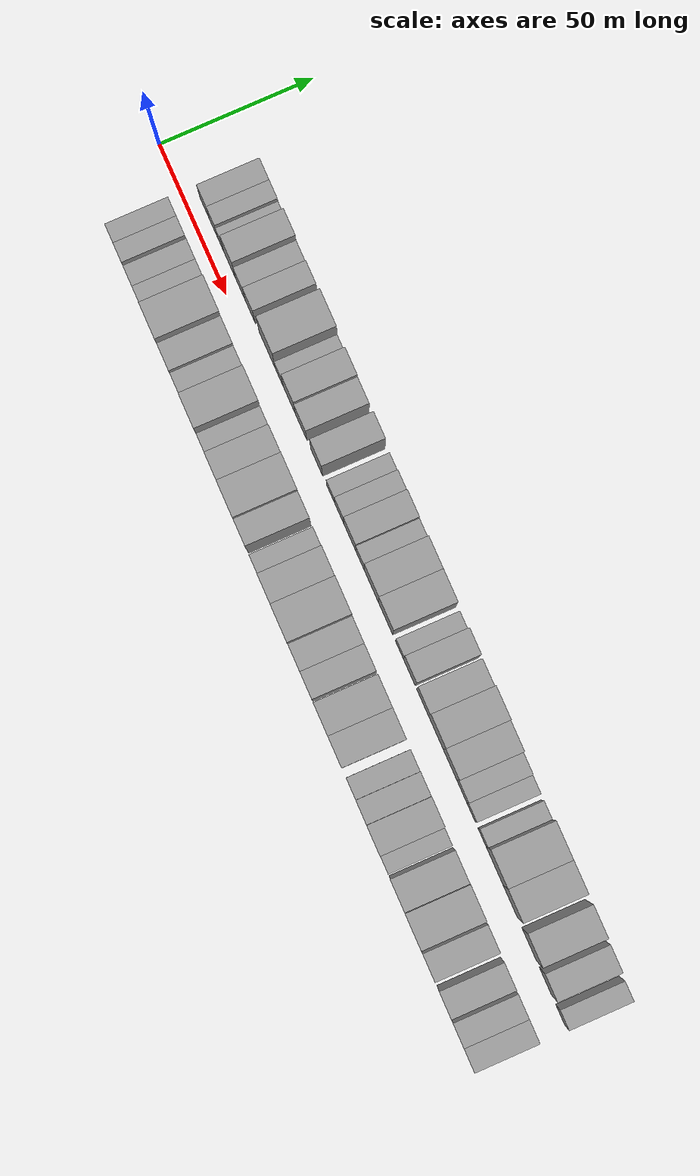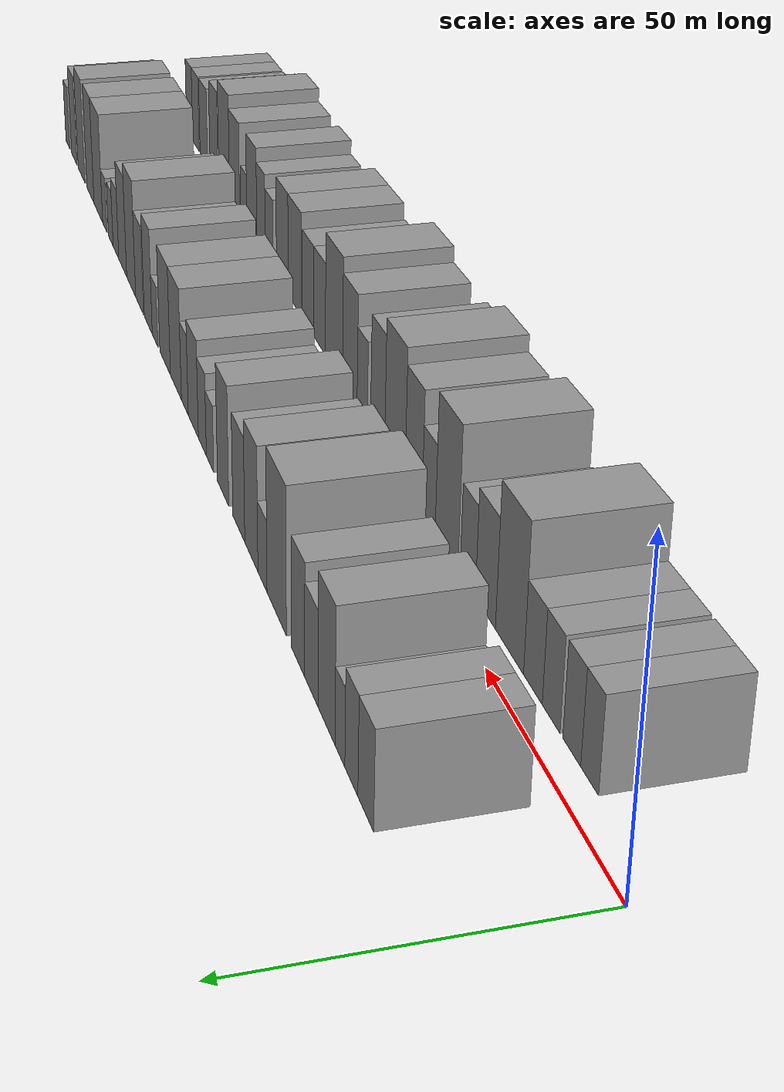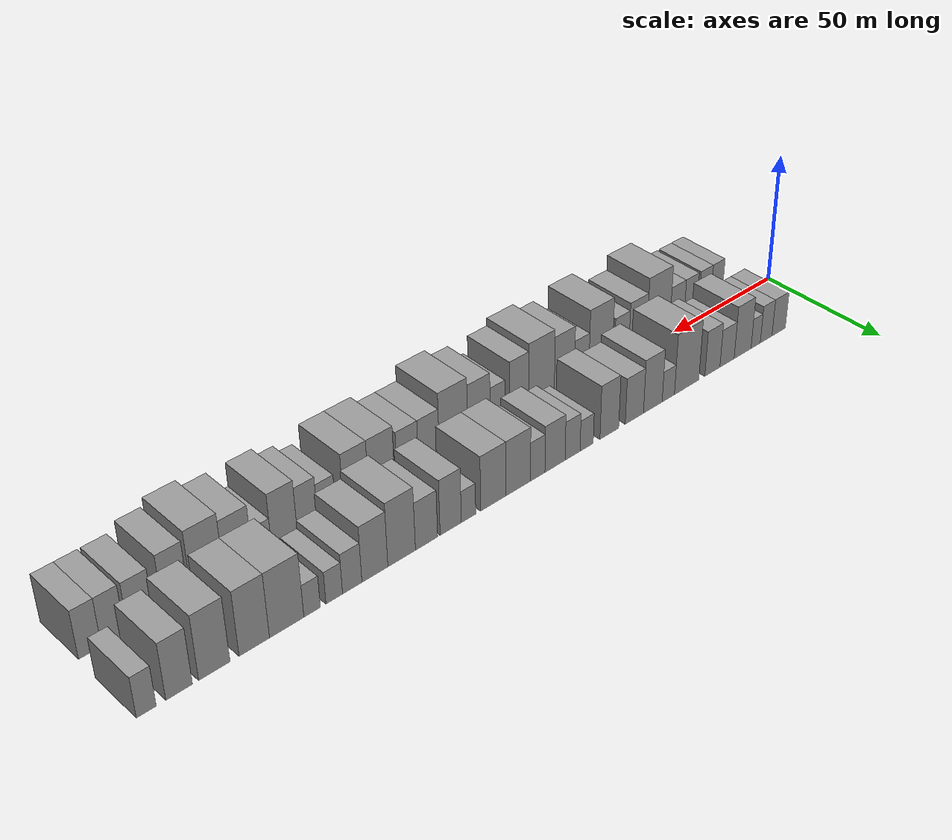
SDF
<sdf version="1.6">
 <world name="default">
  <scene>
   <sky><clouds><speed>12</speed></clouds></sky>
   <ambient>0.4 0.4 0.4 1</ambient>
   <background>0.7 0.7 0.7 1</background>
   <shadows>1</shadows>
  </scene>
  <gravity>0 0 -9.8066</gravity>
  <magnetic_field>6e-06 2.3e-05 -4.2e-05</magnetic_field>
  <physics default="0" name="default_physics" type="ode">
   <ode>
    <solver>
     <type>quick</type>
     <iters>10</iters>
     <sor>1.0</sor>
     <use_dynamic_moi_rescaling>0</use_dynamic_moi_rescaling>
    </solver>
    <constraints>
     <cfm>0</cfm>
     <erp>0.2</erp>
     <contact_max_correcting_vel>100</contact_max_correcting_vel>
     <contact_surface_layer>0.001</contact_surface_layer>
    </constraints>
   </ode>
   <max_step_size>0.004</max_step_size>
   <real_time_factor>1</real_time_factor>
   <real_time_update_rate>250</real_time_update_rate>
  </physics>
  <light name="sun" type="directional">
   <pose>0 0 10 0 0 0</pose>
   <diffuse>0.8 0.8 0.8 1</diffuse>
   <specular>0.2 0.2 0.2 1</specular>
   <attenuation>
    <range>1000</range>
    <constant>0.9</constant>
    <linear>0.01</linear>
    <quadratic>0.001</quadratic>
   </attenuation>
   <direction>-0.5 0.1 -0.9</direction>
  </light>
  <model name="building_1">
   <static>1</static>
   <pose>23.5653 14.5000 0 0.000000 0.000000 1.570796</pose>
   <link name="link">
    <pose>0 0 7.50 0 0 0</pose>
    <collision name="collision"><geometry><box><size>20.0000 7.1306 15.0000</size></box></geometry></collision>
    <visual name="visual">
     <cast_shadows>0</cast_shadows>
     <geometry><box><size>20.0000 7.1306 15.0000</size></box></geometry>
     <material>
      <script>
       <uri>model://grey_wall/materials/scripts</uri>
       <uri>model://grey_wall/materials/textures</uri>
       <name>vrc/grey_wall</name>
      </script>
     </material>
    </visual>
   </link>
  </model>
  <model name="building_2">
   <static>1</static>
   <pose>30.2055 14.5000 0 0.000000 0.000000 1.570796</pose>
   <link name="link">
    <pose>0 0 7.50 0 0 0</pose>
    <collision name="collision"><geometry><box><size>20.0000 6.1498 15.0000</size></box></geometry></collision>
    <visual name="visual">
     <cast_shadows>0</cast_shadows>
     <geometry><box><size>20.0000 6.1498 15.0000</size></box></geometry>
     <material>
      <script>
       <uri>model://grey_wall/materials/scripts</uri>
       <uri>model://grey_wall/materials/textures</uri>
       <name>vrc/grey_wall</name>
      </script>
     </material>
    </visual>
   </link>
  </model>
  <model name="building_3">
   <static>1</static>
   <pose>35.6908 14.5000 0 0.000000 0.000000 1.570796</pose>
   <link name="link">
    <pose>0 0 6.00 0 0 0</pose>
    <collision name="collision"><geometry><box><size>20.0000 4.8208 12.0000</size></box></geometry></collision>
    <visual name="visual">
     <cast_shadows>0</cast_shadows>
     <geometry><box><size>20.0000 4.8208 12.0000</size></box></geometry>
     <material>
      <script>
       <uri>model://grey_wall/materials/scripts</uri>
       <uri>model://grey_wall/materials/textures</uri>
       <name>vrc/grey_wall</name>
      </script>
     </material>
    </visual>
   </link>
  </model>
  <model name="building_4">
   <static>1</static>
   <pose>42.4431 14.5000 0 0.000000 0.000000 1.570796</pose>
   <link name="link">
    <pose>0 0 10.50 0 0 0</pose>
    <collision name="collision"><geometry><box><size>20.0000 8.6839 21.0000</size></box></geometry></collision>
    <visual name="visual">
     <cast_shadows>0</cast_shadows>
     <geometry><box><size>20.0000 8.6839 21.0000</size></box></geometry>
     <material>
      <script>
       <uri>model://grey_wall/materials/scripts</uri>
       <uri>model://grey_wall/materials/textures</uri>
       <name>vrc/grey_wall</name>
      </script>
     </material>
    </visual>
   </link>
  </model>
  <model name="building_5">
   <static>1</static>
   <pose>50.3970 14.5000 0 0.000000 0.000000 1.570796</pose>
   <link name="link">
    <pose>0 0 7.50 0 0 0</pose>
    <collision name="collision"><geometry><box><size>20.0000 7.2239 15.0000</size></box></geometry></collision>
    <visual name="visual">
     <cast_shadows>0</cast_shadows>
     <geometry><box><size>20.0000 7.2239 15.0000</size></box></geometry>
     <material>
      <script>
       <uri>model://grey_wall/materials/scripts</uri>
       <uri>model://grey_wall/materials/textures</uri>
       <name>vrc/grey_wall</name>
      </script>
     </material>
    </visual>
   </link>
  </model>
  <model name="building_6">
   <static>1</static>
   <pose>57.7726 14.5000 0 0.000000 0.000000 1.570796</pose>
   <link name="link">
    <pose>0 0 9.00 0 0 0</pose>
    <collision name="collision"><geometry><box><size>20.0000 7.5274 18.0000</size></box></geometry></collision>
    <visual name="visual">
     <cast_shadows>0</cast_shadows>
     <geometry><box><size>20.0000 7.5274 18.0000</size></box></geometry>
     <material>
      <script>
       <uri>model://grey_wall/materials/scripts</uri>
       <uri>model://grey_wall/materials/textures</uri>
       <name>vrc/grey_wall</name>
      </script>
     </material>
    </visual>
   </link>
  </model>
  <model name="building_7">
   <static>1</static>
   <pose>70.4926 14.5000 0 0.000000 0.000000 1.570796</pose>
   <link name="link">
    <pose>0 0 12.00 0 0 0</pose>
    <collision name="collision"><geometry><box><size>20.0000 11.9125 24.0000</size></box></geometry></collision>
    <visual name="visual">
     <cast_shadows>0</cast_shadows>
     <geometry><box><size>20.0000 11.9125 24.0000</size></box></geometry>
     <material>
      <script>
       <uri>model://grey_wall/materials/scripts</uri>
       <uri>model://grey_wall/materials/textures</uri>
       <name>vrc/grey_wall</name>
      </script>
     </material>
    </visual>
   </link>
  </model>
  <model name="building_8">
   <static>1</static>
   <pose>79.3904 14.5000 0 0.000000 0.000000 1.570796</pose>
   <link name="link">
    <pose>0 0 6.00 0 0 0</pose>
    <collision name="collision"><geometry><box><size>20.0000 5.8832 12.0000</size></box></geometry></collision>
    <visual name="visual">
     <cast_shadows>0</cast_shadows>
     <geometry><box><size>20.0000 5.8832 12.0000</size></box></geometry>
     <material>
      <script>
       <uri>model://grey_wall/materials/scripts</uri>
       <uri>model://grey_wall/materials/textures</uri>
       <name>vrc/grey_wall</name>
      </script>
     </material>
    </visual>
   </link>
  </model>
  <model name="building_9">
   <static>1</static>
   <pose>86.7748 14.5000 0 0.000000 0.000000 1.570796</pose>
   <link name="link">
    <pose>0 0 10.50 0 0 0</pose>
    <collision name="collision"><geometry><box><size>20.0000 8.8856 21.0000</size></box></geometry></collision>
    <visual name="visual">
     <cast_shadows>0</cast_shadows>
     <geometry><box><size>20.0000 8.8856 21.0000</size></box></geometry>
     <material>
      <script>
       <uri>model://grey_wall/materials/scripts</uri>
       <uri>model://grey_wall/materials/textures</uri>
       <name>vrc/grey_wall</name>
      </script>
     </material>
    </visual>
   </link>
  </model>
  <model name="building_10">
   <static>1</static>
   <pose>95.4599 14.5000 0 0.000000 0.000000 1.570796</pose>
   <link name="link">
    <pose>0 0 9.00 0 0 0</pose>
    <collision name="collision"><geometry><box><size>20.0000 8.4845 18.0000</size></box></geometry></collision>
    <visual name="visual">
     <cast_shadows>0</cast_shadows>
     <geometry><box><size>20.0000 8.4845 18.0000</size></box></geometry>
     <material>
      <script>
       <uri>model://grey_wall/materials/scripts</uri>
       <uri>model://grey_wall/materials/textures</uri>
       <name>vrc/grey_wall</name>
      </script>
     </material>
    </visual>
   </link>
  </model>
  <model name="building_11">
   <static>1</static>
   <pose>106.9820 14.5000 0 0.000000 0.000000 1.570796</pose>
   <link name="link">
    <pose>0 0 10.50 0 0 0</pose>
    <collision name="collision"><geometry><box><size>20.0000 8.5598 21.0000</size></box></geometry></collision>
    <visual name="visual">
     <cast_shadows>0</cast_shadows>
     <geometry><box><size>20.0000 8.5598 21.0000</size></box></geometry>
     <material>
      <script>
       <uri>model://grey_wall/materials/scripts</uri>
       <uri>model://grey_wall/materials/textures</uri>
       <name>vrc/grey_wall</name>
      </script>
     </material>
    </visual>
   </link>
  </model>
  <model name="building_12">
   <static>1</static>
   <pose>117.1965 14.5000 0 0.000000 0.000000 1.570796</pose>
   <link name="link">
    <pose>0 0 6.00 0 0 0</pose>
    <collision name="collision"><geometry><box><size>20.0000 5.8691 12.0000</size></box></geometry></collision>
    <visual name="visual">
     <cast_shadows>0</cast_shadows>
     <geometry><box><size>20.0000 5.8691 12.0000</size></box></geometry>
     <material>
      <script>
       <uri>model://grey_wall/materials/scripts</uri>
       <uri>model://grey_wall/materials/textures</uri>
       <name>vrc/grey_wall</name>
      </script>
     </material>
    </visual>
   </link>
  </model>
  <model name="building_13">
   <static>1</static>
   <pose>123.4394 14.5000 0 0.000000 0.000000 1.570796</pose>
   <link name="link">
    <pose>0 0 7.50 0 0 0</pose>
    <collision name="collision"><geometry><box><size>20.0000 6.6167 15.0000</size></box></geometry></collision>
    <visual name="visual">
     <cast_shadows>0</cast_shadows>
     <geometry><box><size>20.0000 6.6167 15.0000</size></box></geometry>
     <material>
      <script>
       <uri>model://grey_wall/materials/scripts</uri>
       <uri>model://grey_wall/materials/textures</uri>
       <name>vrc/grey_wall</name>
      </script>
     </material>
    </visual>
   </link>
  </model>
  <model name="building_14">
   <static>1</static>
   <pose>131.1230 14.5000 0 0.000000 0.000000 1.570796</pose>
   <link name="link">
    <pose>0 0 9.00 0 0 0</pose>
    <collision name="collision"><geometry><box><size>20.0000 8.7505 18.0000</size></box></geometry></collision>
    <visual name="visual">
     <cast_shadows>0</cast_shadows>
     <geometry><box><size>20.0000 8.7505 18.0000</size></box></geometry>
     <material>
      <script>
       <uri>model://grey_wall/materials/scripts</uri>
       <uri>model://grey_wall/materials/textures</uri>
       <name>vrc/grey_wall</name>
      </script>
     </material>
    </visual>
   </link>
  </model>
  <model name="building_15">
   <static>1</static>
   <pose>138.5844 14.5000 0 0.000000 0.000000 1.570796</pose>
   <link name="link">
    <pose>0 0 7.50 0 0 0</pose>
    <collision name="collision"><geometry><box><size>20.0000 6.1723 15.0000</size></box></geometry></collision>
    <visual name="visual">
     <cast_shadows>0</cast_shadows>
     <geometry><box><size>20.0000 6.1723 15.0000</size></box></geometry>
     <material>
      <script>
       <uri>model://grey_wall/materials/scripts</uri>
       <uri>model://grey_wall/materials/textures</uri>
       <name>vrc/grey_wall</name>
      </script>
     </material>
    </visual>
   </link>
  </model>
  <model name="building_16">
   <static>1</static>
   <pose>146.8104 14.5000 0 0.000000 0.000000 1.570796</pose>
   <link name="link">
    <pose>0 0 10.50 0 0 0</pose>
    <collision name="collision"><geometry><box><size>20.0000 10.2797 21.0000</size></box></geometry></collision>
    <visual name="visual">
     <cast_shadows>0</cast_shadows>
     <geometry><box><size>20.0000 10.2797 21.0000</size></box></geometry>
     <material>
      <script>
       <uri>model://grey_wall/materials/scripts</uri>
       <uri>model://grey_wall/materials/textures</uri>
       <name>vrc/grey_wall</name>
      </script>
     </material>
    </visual>
   </link>
  </model>
  <model name="building_17">
   <static>1</static>
   <pose>157.1596 14.5000 0 0.000000 0.000000 1.570796</pose>
   <link name="link">
    <pose>0 0 10.50 0 0 0</pose>
    <collision name="collision"><geometry><box><size>20.0000 10.4187 21.0000</size></box></geometry></collision>
    <visual name="visual">
     <cast_shadows>0</cast_shadows>
     <geometry><box><size>20.0000 10.4187 21.0000</size></box></geometry>
     <material>
      <script>
       <uri>model://grey_wall/materials/scripts</uri>
       <uri>model://grey_wall/materials/textures</uri>
       <name>vrc/grey_wall</name>
      </script>
     </material>
    </visual>
   </link>
  </model>
  <model name="building_18">
   <static>1</static>
   <pose>167.2716 14.5000 0 0.000000 0.000000 1.570796</pose>
   <link name="link">
    <pose>0 0 6.00 0 0 0</pose>
    <collision name="collision"><geometry><box><size>20.0000 5.8053 12.0000</size></box></geometry></collision>
    <visual name="visual">
     <cast_shadows>0</cast_shadows>
     <geometry><box><size>20.0000 5.8053 12.0000</size></box></geometry>
     <material>
      <script>
       <uri>model://grey_wall/materials/scripts</uri>
       <uri>model://grey_wall/materials/textures</uri>
       <name>vrc/grey_wall</name>
      </script>
     </material>
    </visual>
   </link>
  </model>
  <model name="building_19">
   <static>1</static>
   <pose>174.3769 14.5000 0 0.000000 0.000000 1.570796</pose>
   <link name="link">
    <pose>0 0 10.50 0 0 0</pose>
    <collision name="collision"><geometry><box><size>20.0000 8.4054 21.0000</size></box></geometry></collision>
    <visual name="visual">
     <cast_shadows>0</cast_shadows>
     <geometry><box><size>20.0000 8.4054 21.0000</size></box></geometry>
     <material>
      <script>
       <uri>model://grey_wall/materials/scripts</uri>
       <uri>model://grey_wall/materials/textures</uri>
       <name>vrc/grey_wall</name>
      </script>
     </material>
    </visual>
   </link>
  </model>
  <model name="building_20">
   <static>1</static>
   <pose>183.8857 14.5000 0 0.000000 0.000000 1.570796</pose>
   <link name="link">
    <pose>0 0 9.00 0 0 0</pose>
    <collision name="collision"><geometry><box><size>20.0000 8.6121 18.0000</size></box></geometry></collision>
    <visual name="visual">
     <cast_shadows>0</cast_shadows>
     <geometry><box><size>20.0000 8.6121 18.0000</size></box></geometry>
     <material>
      <script>
       <uri>model://grey_wall/materials/scripts</uri>
       <uri>model://grey_wall/materials/textures</uri>
       <name>vrc/grey_wall</name>
      </script>
     </material>
    </visual>
   </link>
  </model>
  <model name="building_21">
   <static>1</static>
   <pose>193.4451 14.5000 0 0.000000 0.000000 1.570796</pose>
   <link name="link">
    <pose>0 0 12.00 0 0 0</pose>
    <collision name="collision"><geometry><box><size>20.0000 10.5067 24.0000</size></box></geometry></collision>
    <visual name="visual">
     <cast_shadows>0</cast_shadows>
     <geometry><box><size>20.0000 10.5067 24.0000</size></box></geometry>
     <material>
      <script>
       <uri>model://grey_wall/materials/scripts</uri>
       <uri>model://grey_wall/materials/textures</uri>
       <name>vrc/grey_wall</name>
      </script>
     </material>
    </visual>
   </link>
  </model>
  <model name="building_22">
   <static>1</static>
   <pose>203.5447 14.5000 0 0.000000 0.000000 1.570796</pose>
   <link name="link">
    <pose>0 0 10.50 0 0 0</pose>
    <collision name="collision"><geometry><box><size>20.0000 9.6924 21.0000</size></box></geometry></collision>
    <visual name="visual">
     <cast_shadows>0</cast_shadows>
     <geometry><box><size>20.0000 9.6924 21.0000</size></box></geometry>
     <material>
      <script>
       <uri>model://grey_wall/materials/scripts</uri>
       <uri>model://grey_wall/materials/textures</uri>
       <name>vrc/grey_wall</name>
      </script>
     </material>
    </visual>
   </link>
  </model>
  <model name="building_23">
   <static>1</static>
   <pose>211.9267 14.5000 0 0.000000 0.000000 1.570796</pose>
   <link name="link">
    <pose>0 0 7.50 0 0 0</pose>
    <collision name="collision"><geometry><box><size>20.0000 7.0716 15.0000</size></box></geometry></collision>
    <visual name="visual">
     <cast_shadows>0</cast_shadows>
     <geometry><box><size>20.0000 7.0716 15.0000</size></box></geometry>
     <material>
      <script>
       <uri>model://grey_wall/materials/scripts</uri>
       <uri>model://grey_wall/materials/textures</uri>
       <name>vrc/grey_wall</name>
      </script>
     </material>
    </visual>
   </link>
  </model>
  <model name="building_24">
   <static>1</static>
   <pose>218.4605 14.5000 0 0.000000 0.000000 1.570796</pose>
   <link name="link">
    <pose>0 0 6.00 0 0 0</pose>
    <collision name="collision"><geometry><box><size>20.0000 5.9958 12.0000</size></box></geometry></collision>
    <visual name="visual">
     <cast_shadows>0</cast_shadows>
     <geometry><box><size>20.0000 5.9958 12.0000</size></box></geometry>
     <material>
      <script>
       <uri>model://grey_wall/materials/scripts</uri>
       <uri>model://grey_wall/materials/textures</uri>
       <name>vrc/grey_wall</name>
      </script>
     </material>
    </visual>
   </link>
  </model>
  <model name="building_25">
   <static>1</static>
   <pose>226.3799 14.5000 0 0.000000 0.000000 1.570796</pose>
   <link name="link">
    <pose>0 0 6.00 0 0 0</pose>
    <collision name="collision"><geometry><box><size>20.0000 5.8430 12.0000</size></box></geometry></collision>
    <visual name="visual">
     <cast_shadows>0</cast_shadows>
     <geometry><box><size>20.0000 5.8430 12.0000</size></box></geometry>
     <material>
      <script>
       <uri>model://grey_wall/materials/scripts</uri>
       <uri>model://grey_wall/materials/textures</uri>
       <name>vrc/grey_wall</name>
      </script>
     </material>
    </visual>
   </link>
  </model>
  <model name="building_26">
   <static>1</static>
   <pose>235.2744 14.5000 0 0.000000 0.000000 1.570796</pose>
   <link name="link">
    <pose>0 0 12.00 0 0 0</pose>
    <collision name="collision"><geometry><box><size>20.0000 11.9460 24.0000</size></box></geometry></collision>
    <visual name="visual">
     <cast_shadows>0</cast_shadows>
     <geometry><box><size>20.0000 11.9460 24.0000</size></box></geometry>
     <material>
      <script>
       <uri>model://grey_wall/materials/scripts</uri>
       <uri>model://grey_wall/materials/textures</uri>
       <name>vrc/grey_wall</name>
      </script>
     </material>
    </visual>
   </link>
  </model>
  <model name="building_27">
   <static>1</static>
   <pose>246.4084 14.5000 0 0.000000 0.000000 1.570796</pose>
   <link name="link">
    <pose>0 0 12.00 0 0 0</pose>
    <collision name="collision"><geometry><box><size>20.0000 10.3221 24.0000</size></box></geometry></collision>
    <visual name="visual">
     <cast_shadows>0</cast_shadows>
     <geometry><box><size>20.0000 10.3221 24.0000</size></box></geometry>
     <material>
      <script>
       <uri>model://grey_wall/materials/scripts</uri>
       <uri>model://grey_wall/materials/textures</uri>
       <name>vrc/grey_wall</name>
      </script>
     </material>
    </visual>
   </link>
  </model>
  <model name="building_28">
   <static>1</static>
   <pose>259.7302 14.5000 0 0.000000 0.000000 1.570796</pose>
   <link name="link">
    <pose>0 0 12.00 0 0 0</pose>
    <collision name="collision"><geometry><box><size>20.0000 10.3215 24.0000</size></box></geometry></collision>
    <visual name="visual">
     <cast_shadows>0</cast_shadows>
     <geometry><box><size>20.0000 10.3215 24.0000</size></box></geometry>
     <material>
      <script>
       <uri>model://grey_wall/materials/scripts</uri>
       <uri>model://grey_wall/materials/textures</uri>
       <name>vrc/grey_wall</name>
      </script>
     </material>
    </visual>
   </link>
  </model>
  <model name="building_29">
   <static>1</static>
   <pose>271.1637 14.5000 0 0.000000 0.000000 1.570796</pose>
   <link name="link">
    <pose>0 0 10.50 0 0 0</pose>
    <collision name="collision"><geometry><box><size>20.0000 8.5455 21.0000</size></box></geometry></collision>
    <visual name="visual">
     <cast_shadows>0</cast_shadows>
     <geometry><box><size>20.0000 8.5455 21.0000</size></box></geometry>
     <material>
      <script>
       <uri>model://grey_wall/materials/scripts</uri>
       <uri>model://grey_wall/materials/textures</uri>
       <name>vrc/grey_wall</name>
      </script>
     </material>
    </visual>
   </link>
  </model>
  <model name="building_30">
   <static>1</static>
   <pose>281.5586 14.5000 0 0.000000 0.000000 1.570796</pose>
   <link name="link">
    <pose>0 0 7.50 0 0 0</pose>
    <collision name="collision"><geometry><box><size>20.0000 6.2443 15.0000</size></box></geometry></collision>
    <visual name="visual">
     <cast_shadows>0</cast_shadows>
     <geometry><box><size>20.0000 6.2443 15.0000</size></box></geometry>
     <material>
      <script>
       <uri>model://grey_wall/materials/scripts</uri>
       <uri>model://grey_wall/materials/textures</uri>
       <name>vrc/grey_wall</name>
      </script>
     </material>
    </visual>
   </link>
  </model>
  <model name="building_31">
   <static>1</static>
   <pose>23.0457 -14.5000 0 0.000000 0.000000 1.570796</pose>
   <link name="link">
    <pose>0 0 7.50 0 0 0</pose>
    <collision name="collision"><geometry><box><size>20.0000 6.0913 15.0000</size></box></geometry></collision>
    <visual name="visual">
     <cast_shadows>0</cast_shadows>
     <geometry><box><size>20.0000 6.0913 15.0000</size></box></geometry>
     <material>
      <script>
       <uri>model://grey_wall/materials/scripts</uri>
       <uri>model://grey_wall/materials/textures</uri>
       <name>vrc/grey_wall</name>
      </script>
     </material>
    </visual>
   </link>
  </model>
  <model name="building_32">
   <static>1</static>
   <pose>29.2646 -14.5000 0 0.000000 0.000000 1.570796</pose>
   <link name="link">
    <pose>0 0 7.50 0 0 0</pose>
    <collision name="collision"><geometry><box><size>20.0000 6.3464 15.0000</size></box></geometry></collision>
    <visual name="visual">
     <cast_shadows>0</cast_shadows>
     <geometry><box><size>20.0000 6.3464 15.0000</size></box></geometry>
     <material>
      <script>
       <uri>model://grey_wall/materials/scripts</uri>
       <uri>model://grey_wall/materials/textures</uri>
       <name>vrc/grey_wall</name>
      </script>
     </material>
    </visual>
   </link>
  </model>
  <model name="building_33">
   <static>1</static>
   <pose>36.7517 -14.5000 0 0.000000 0.000000 1.570796</pose>
   <link name="link">
    <pose>0 0 7.50 0 0 0</pose>
    <collision name="collision"><geometry><box><size>20.0000 6.6278 15.0000</size></box></geometry></collision>
    <visual name="visual">
     <cast_shadows>0</cast_shadows>
     <geometry><box><size>20.0000 6.6278 15.0000</size></box></geometry>
     <material>
      <script>
       <uri>model://grey_wall/materials/scripts</uri>
       <uri>model://grey_wall/materials/textures</uri>
       <name>vrc/grey_wall</name>
      </script>
     </material>
    </visual>
   </link>
  </model>
  <model name="building_34">
   <static>1</static>
   <pose>43.7119 -14.5000 0 0.000000 0.000000 1.570796</pose>
   <link name="link">
    <pose>0 0 7.50 0 0 0</pose>
    <collision name="collision"><geometry><box><size>20.0000 7.2928 15.0000</size></box></geometry></collision>
    <visual name="visual">
     <cast_shadows>0</cast_shadows>
     <geometry><box><size>20.0000 7.2928 15.0000</size></box></geometry>
     <material>
      <script>
       <uri>model://grey_wall/materials/scripts</uri>
       <uri>model://grey_wall/materials/textures</uri>
       <name>vrc/grey_wall</name>
      </script>
     </material>
    </visual>
   </link>
  </model>
  <model name="building_35">
   <static>1</static>
   <pose>53.1922 -14.5000 0 0.000000 0.000000 1.570796</pose>
   <link name="link">
    <pose>0 0 12.00 0 0 0</pose>
    <collision name="collision"><geometry><box><size>20.0000 11.6677 24.0000</size></box></geometry></collision>
    <visual name="visual">
     <cast_shadows>0</cast_shadows>
     <geometry><box><size>20.0000 11.6677 24.0000</size></box></geometry>
     <material>
      <script>
       <uri>model://grey_wall/materials/scripts</uri>
       <uri>model://grey_wall/materials/textures</uri>
       <name>vrc/grey_wall</name>
      </script>
     </material>
    </visual>
   </link>
  </model>
  <model name="building_36">
   <static>1</static>
   <pose>63.4574 -14.5000 0 0.000000 0.000000 1.570796</pose>
   <link name="link">
    <pose>0 0 9.00 0 0 0</pose>
    <collision name="collision"><geometry><box><size>20.0000 8.8628 18.0000</size></box></geometry></collision>
    <visual name="visual">
     <cast_shadows>0</cast_shadows>
     <geometry><box><size>20.0000 8.8628 18.0000</size></box></geometry>
     <material>
      <script>
       <uri>model://grey_wall/materials/scripts</uri>
       <uri>model://grey_wall/materials/textures</uri>
       <name>vrc/grey_wall</name>
      </script>
     </material>
    </visual>
   </link>
  </model>
  <model name="building_37">
   <static>1</static>
   <pose>71.4271 -14.5000 0 0.000000 0.000000 1.570796</pose>
   <link name="link">
    <pose>0 0 7.50 0 0 0</pose>
    <collision name="collision"><geometry><box><size>20.0000 7.0765 15.0000</size></box></geometry></collision>
    <visual name="visual">
     <cast_shadows>0</cast_shadows>
     <geometry><box><size>20.0000 7.0765 15.0000</size></box></geometry>
     <material>
      <script>
       <uri>model://grey_wall/materials/scripts</uri>
       <uri>model://grey_wall/materials/textures</uri>
       <name>vrc/grey_wall</name>
      </script>
     </material>
    </visual>
   </link>
  </model>
  <model name="building_38">
   <static>1</static>
   <pose>81.5753 -14.5000 0 0.000000 0.000000 1.570796</pose>
   <link name="link">
    <pose>0 0 12.00 0 0 0</pose>
    <collision name="collision"><geometry><box><size>20.0000 11.2199 24.0000</size></box></geometry></collision>
    <visual name="visual">
     <cast_shadows>0</cast_shadows>
     <geometry><box><size>20.0000 11.2199 24.0000</size></box></geometry>
     <material>
      <script>
       <uri>model://grey_wall/materials/scripts</uri>
       <uri>model://grey_wall/materials/textures</uri>
       <name>vrc/grey_wall</name>
      </script>
     </material>
    </visual>
   </link>
  </model>
  <model name="building_39">
   <static>1</static>
   <pose>90.6069 -14.5000 0 0.000000 0.000000 1.570796</pose>
   <link name="link">
    <pose>0 0 7.50 0 0 0</pose>
    <collision name="collision"><geometry><box><size>20.0000 6.8432 15.0000</size></box></geometry></collision>
    <visual name="visual">
     <cast_shadows>0</cast_shadows>
     <geometry><box><size>20.0000 6.8432 15.0000</size></box></geometry>
     <material>
      <script>
       <uri>model://grey_wall/materials/scripts</uri>
       <uri>model://grey_wall/materials/textures</uri>
       <name>vrc/grey_wall</name>
      </script>
     </material>
    </visual>
   </link>
  </model>
  <model name="building_40">
   <static>1</static>
   <pose>98.6575 -14.5000 0 0.000000 0.000000 1.570796</pose>
   <link name="link">
    <pose>0 0 10.50 0 0 0</pose>
    <collision name="collision"><geometry><box><size>20.0000 9.2580 21.0000</size></box></geometry></collision>
    <visual name="visual">
     <cast_shadows>0</cast_shadows>
     <geometry><box><size>20.0000 9.2580 21.0000</size></box></geometry>
     <material>
      <script>
       <uri>model://grey_wall/materials/scripts</uri>
       <uri>model://grey_wall/materials/textures</uri>
       <name>vrc/grey_wall</name>
      </script>
     </material>
    </visual>
   </link>
  </model>
  <model name="building_41">
   <static>1</static>
   <pose>109.1220 -14.5000 0 0.000000 0.000000 1.570796</pose>
   <link name="link">
    <pose>0 0 12.00 0 0 0</pose>
    <collision name="collision"><geometry><box><size>20.0000 11.6709 24.0000</size></box></geometry></collision>
    <visual name="visual">
     <cast_shadows>0</cast_shadows>
     <geometry><box><size>20.0000 11.6709 24.0000</size></box></geometry>
     <material>
      <script>
       <uri>model://grey_wall/materials/scripts</uri>
       <uri>model://grey_wall/materials/textures</uri>
       <name>vrc/grey_wall</name>
      </script>
     </material>
    </visual>
   </link>
  </model>
  <model name="building_42">
   <static>1</static>
   <pose>119.2169 -14.5000 0 0.000000 0.000000 1.570796</pose>
   <link name="link">
    <pose>0 0 10.50 0 0 0</pose>
    <collision name="collision"><geometry><box><size>20.0000 8.5188 21.0000</size></box></geometry></collision>
    <visual name="visual">
     <cast_shadows>0</cast_shadows>
     <geometry><box><size>20.0000 8.5188 21.0000</size></box></geometry>
     <material>
      <script>
       <uri>model://grey_wall/materials/scripts</uri>
       <uri>model://grey_wall/materials/textures</uri>
       <name>vrc/grey_wall</name>
      </script>
     </material>
    </visual>
   </link>
  </model>
  <model name="building_43">
   <static>1</static>
   <pose>128.7177 -14.5000 0 0.000000 0.000000 1.570796</pose>
   <link name="link">
    <pose>0 0 7.50 0 0 0</pose>
    <collision name="collision"><geometry><box><size>20.0000 6.4829 15.0000</size></box></geometry></collision>
    <visual name="visual">
     <cast_shadows>0</cast_shadows>
     <geometry><box><size>20.0000 6.4829 15.0000</size></box></geometry>
     <material>
      <script>
       <uri>model://grey_wall/materials/scripts</uri>
       <uri>model://grey_wall/materials/textures</uri>
       <name>vrc/grey_wall</name>
      </script>
     </material>
    </visual>
   </link>
  </model>
  <model name="building_44">
   <static>1</static>
   <pose>136.7992 -14.5000 0 0.000000 0.000000 1.570796</pose>
   <link name="link">
    <pose>0 0 10.50 0 0 0</pose>
    <collision name="collision"><geometry><box><size>20.0000 9.6801 21.0000</size></box></geometry></collision>
    <visual name="visual">
     <cast_shadows>0</cast_shadows>
     <geometry><box><size>20.0000 9.6801 21.0000</size></box></geometry>
     <material>
      <script>
       <uri>model://grey_wall/materials/scripts</uri>
       <uri>model://grey_wall/materials/textures</uri>
       <name>vrc/grey_wall</name>
      </script>
     </material>
    </visual>
   </link>
  </model>
  <model name="building_45">
   <static>1</static>
   <pose>147.6166 -14.5000 0 0.000000 0.000000 1.570796</pose>
   <link name="link">
    <pose>0 0 12.00 0 0 0</pose>
    <collision name="collision"><geometry><box><size>20.0000 11.9546 24.0000</size></box></geometry></collision>
    <visual name="visual">
     <cast_shadows>0</cast_shadows>
     <geometry><box><size>20.0000 11.9546 24.0000</size></box></geometry>
     <material>
      <script>
       <uri>model://grey_wall/materials/scripts</uri>
       <uri>model://grey_wall/materials/textures</uri>
       <name>vrc/grey_wall</name>
      </script>
     </material>
    </visual>
   </link>
  </model>
  <model name="building_46">
   <static>1</static>
   <pose>157.8919 -14.5000 0 0.000000 0.000000 1.570796</pose>
   <link name="link">
    <pose>0 0 9.00 0 0 0</pose>
    <collision name="collision"><geometry><box><size>20.0000 8.5961 18.0000</size></box></geometry></collision>
    <visual name="visual">
     <cast_shadows>0</cast_shadows>
     <geometry><box><size>20.0000 8.5961 18.0000</size></box></geometry>
     <material>
      <script>
       <uri>model://grey_wall/materials/scripts</uri>
       <uri>model://grey_wall/materials/textures</uri>
       <name>vrc/grey_wall</name>
      </script>
     </material>
    </visual>
   </link>
  </model>
  <model name="building_47">
   <static>1</static>
   <pose>166.5042 -14.5000 0 0.000000 0.000000 1.570796</pose>
   <link name="link">
    <pose>0 0 9.00 0 0 0</pose>
    <collision name="collision"><geometry><box><size>20.0000 8.6283 18.0000</size></box></geometry></collision>
    <visual name="visual">
     <cast_shadows>0</cast_shadows>
     <geometry><box><size>20.0000 8.6283 18.0000</size></box></geometry>
     <material>
      <script>
       <uri>model://grey_wall/materials/scripts</uri>
       <uri>model://grey_wall/materials/textures</uri>
       <name>vrc/grey_wall</name>
      </script>
     </material>
    </visual>
   </link>
  </model>
  <model name="building_48">
   <static>1</static>
   <pose>176.9864 -14.5000 0 0.000000 0.000000 1.570796</pose>
   <link name="link">
    <pose>0 0 10.50 0 0 0</pose>
    <collision name="collision"><geometry><box><size>20.0000 10.3362 21.0000</size></box></geometry></collision>
    <visual name="visual">
     <cast_shadows>0</cast_shadows>
     <geometry><box><size>20.0000 10.3362 21.0000</size></box></geometry>
     <material>
      <script>
       <uri>model://grey_wall/materials/scripts</uri>
       <uri>model://grey_wall/materials/textures</uri>
       <name>vrc/grey_wall</name>
      </script>
     </material>
    </visual>
   </link>
  </model>
  <model name="building_49">
   <static>1</static>
   <pose>187.0354 -14.5000 0 0.000000 0.000000 1.570796</pose>
   <link name="link">
    <pose>0 0 10.50 0 0 0</pose>
    <collision name="collision"><geometry><box><size>20.0000 9.7618 21.0000</size></box></geometry></collision>
    <visual name="visual">
     <cast_shadows>0</cast_shadows>
     <geometry><box><size>20.0000 9.7618 21.0000</size></box></geometry>
     <material>
      <script>
       <uri>model://grey_wall/materials/scripts</uri>
       <uri>model://grey_wall/materials/textures</uri>
       <name>vrc/grey_wall</name>
      </script>
     </material>
    </visual>
   </link>
  </model>
  <model name="building_50">
   <static>1</static>
   <pose>198.3349 -14.5000 0 0.000000 0.000000 1.570796</pose>
   <link name="link">
    <pose>0 0 7.50 0 0 0</pose>
    <collision name="collision"><geometry><box><size>20.0000 6.8371 15.0000</size></box></geometry></collision>
    <visual name="visual">
     <cast_shadows>0</cast_shadows>
     <geometry><box><size>20.0000 6.8371 15.0000</size></box></geometry>
     <material>
      <script>
       <uri>model://grey_wall/materials/scripts</uri>
       <uri>model://grey_wall/materials/textures</uri>
       <name>vrc/grey_wall</name>
      </script>
     </material>
    </visual>
   </link>
  </model>
  <model name="building_51">
   <static>1</static>
   <pose>205.5604 -14.5000 0 0.000000 0.000000 1.570796</pose>
   <link name="link">
    <pose>0 0 9.00 0 0 0</pose>
    <collision name="collision"><geometry><box><size>20.0000 7.6139 18.0000</size></box></geometry></collision>
    <visual name="visual">
     <cast_shadows>0</cast_shadows>
     <geometry><box><size>20.0000 7.6139 18.0000</size></box></geometry>
     <material>
      <script>
       <uri>model://grey_wall/materials/scripts</uri>
       <uri>model://grey_wall/materials/textures</uri>
       <name>vrc/grey_wall</name>
      </script>
     </material>
    </visual>
   </link>
  </model>
  <model name="building_52">
   <static>1</static>
   <pose>214.0812 -14.5000 0 0.000000 0.000000 1.570796</pose>
   <link name="link">
    <pose>0 0 10.50 0 0 0</pose>
    <collision name="collision"><geometry><box><size>20.0000 9.4277 21.0000</size></box></geometry></collision>
    <visual name="visual">
     <cast_shadows>0</cast_shadows>
     <geometry><box><size>20.0000 9.4277 21.0000</size></box></geometry>
     <material>
      <script>
       <uri>model://grey_wall/materials/scripts</uri>
       <uri>model://grey_wall/materials/textures</uri>
       <name>vrc/grey_wall</name>
      </script>
     </material>
    </visual>
   </link>
  </model>
  <model name="building_53">
   <static>1</static>
   <pose>221.7443 -14.5000 0 0.000000 0.000000 1.570796</pose>
   <link name="link">
    <pose>0 0 6.00 0 0 0</pose>
    <collision name="collision"><geometry><box><size>20.0000 5.8983 12.0000</size></box></geometry></collision>
    <visual name="visual">
     <cast_shadows>0</cast_shadows>
     <geometry><box><size>20.0000 5.8983 12.0000</size></box></geometry>
     <material>
      <script>
       <uri>model://grey_wall/materials/scripts</uri>
       <uri>model://grey_wall/materials/textures</uri>
       <name>vrc/grey_wall</name>
      </script>
     </material>
    </visual>
   </link>
  </model>
  <model name="building_54">
   <static>1</static>
   <pose>230.7844 -14.5000 0 0.000000 0.000000 1.570796</pose>
   <link name="link">
    <pose>0 0 10.50 0 0 0</pose>
    <collision name="collision"><geometry><box><size>20.0000 10.1820 21.0000</size></box></geometry></collision>
    <visual name="visual">
     <cast_shadows>0</cast_shadows>
     <geometry><box><size>20.0000 10.1820 21.0000</size></box></geometry>
     <material>
      <script>
       <uri>model://grey_wall/materials/scripts</uri>
       <uri>model://grey_wall/materials/textures</uri>
       <name>vrc/grey_wall</name>
      </script>
     </material>
    </visual>
   </link>
  </model>
  <model name="building_55">
   <static>1</static>
   <pose>241.5117 -14.5000 0 0.000000 0.000000 1.570796</pose>
   <link name="link">
    <pose>0 0 12.00 0 0 0</pose>
    <collision name="collision"><geometry><box><size>20.0000 11.2726 24.0000</size></box></geometry></collision>
    <visual name="visual">
     <cast_shadows>0</cast_shadows>
     <geometry><box><size>20.0000 11.2726 24.0000</size></box></geometry>
     <material>
      <script>
       <uri>model://grey_wall/materials/scripts</uri>
       <uri>model://grey_wall/materials/textures</uri>
       <name>vrc/grey_wall</name>
      </script>
     </material>
    </visual>
   </link>
  </model>
  <model name="building_56">
   <static>1</static>
   <pose>252.4798 -14.5000 0 0.000000 0.000000 1.570796</pose>
   <link name="link">
    <pose>0 0 10.50 0 0 0</pose>
    <collision name="collision"><geometry><box><size>20.0000 8.6636 21.0000</size></box></geometry></collision>
    <visual name="visual">
     <cast_shadows>0</cast_shadows>
     <geometry><box><size>20.0000 8.6636 21.0000</size></box></geometry>
     <material>
      <script>
       <uri>model://grey_wall/materials/scripts</uri>
       <uri>model://grey_wall/materials/textures</uri>
       <name>vrc/grey_wall</name>
      </script>
     </material>
    </visual>
   </link>
  </model>
  <model name="building_57">
   <static>1</static>
   <pose>264.0759 -14.5000 0 0.000000 0.000000 1.570796</pose>
   <link name="link">
    <pose>0 0 9.00 0 0 0</pose>
    <collision name="collision"><geometry><box><size>20.0000 8.5286 18.0000</size></box></geometry></collision>
    <visual name="visual">
     <cast_shadows>0</cast_shadows>
     <geometry><box><size>20.0000 8.5286 18.0000</size></box></geometry>
     <material>
      <script>
       <uri>model://grey_wall/materials/scripts</uri>
       <uri>model://grey_wall/materials/textures</uri>
       <name>vrc/grey_wall</name>
      </script>
     </material>
    </visual>
   </link>
  </model>
  <model name="building_58">
   <static>1</static>
   <pose>273.1595 -14.5000 0 0.000000 0.000000 1.570796</pose>
   <link name="link">
    <pose>0 0 9.00 0 0 0</pose>
    <collision name="collision"><geometry><box><size>20.0000 7.6387 18.0000</size></box></geometry></collision>
    <visual name="visual">
     <cast_shadows>0</cast_shadows>
     <geometry><box><size>20.0000 7.6387 18.0000</size></box></geometry>
     <material>
      <script>
       <uri>model://grey_wall/materials/scripts</uri>
       <uri>model://grey_wall/materials/textures</uri>
       <name>vrc/grey_wall</name>
      </script>
     </material>
    </visual>
   </link>
  </model>
  <model name="building_59">
   <static>1</static>
   <pose>280.6332 -14.5000 0 0.000000 0.000000 1.570796</pose>
   <link name="link">
    <pose>0 0 9.00 0 0 0</pose>
    <collision name="collision"><geometry><box><size>20.0000 7.3086 18.0000</size></box></geometry></collision>
    <visual name="visual">
     <cast_shadows>0</cast_shadows>
     <geometry><box><size>20.0000 7.3086 18.0000</size></box></geometry>
     <material>
      <script>
       <uri>model://grey_wall/materials/scripts</uri>
       <uri>model://grey_wall/materials/textures</uri>
       <name>vrc/grey_wall</name>
      </script>
     </material>
    </visual>
   </link>
  </model>
 </world>
</sdf>
